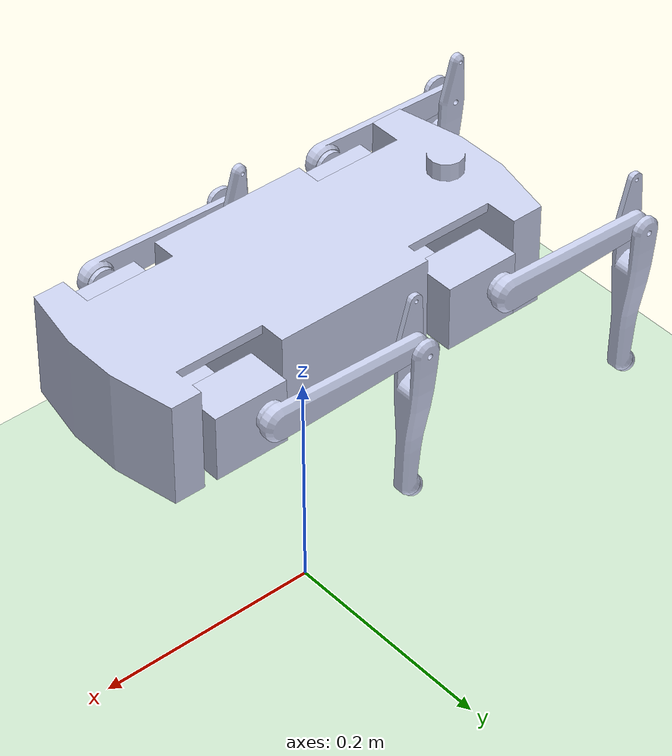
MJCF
<?xml version='1.0' encoding='utf-8'?>
<mujoco model="robodog">
  <compiler angle="radian" meshdir="d:/vscode/RoboDogQuadruped/robodog_ws/src/robodog_description/meshes/" />

  <option timestep="0.002" iterations="50" solver="PGS" gravity="0 0 -9.81" /><asset>
    <mesh name="base_collision" content_type="model/stl" file="base_collision.STL" />
    <mesh name="L_link1_collision" content_type="model/stl" file="L_link1_collision.STL" />
    <mesh name="L_link2_collision" content_type="model/stl" file="L_link2_collision.STL" />
    <mesh name="L_link3_collision" content_type="model/stl" file="L_link3_collision.STL" />
    <mesh name="link4_collision" content_type="model/stl" file="link4_collision.STL" />
    <mesh name="R_link1_collision" content_type="model/stl" file="R_link1_collision.STL" />
    <mesh name="R_link2_collision" content_type="model/stl" file="R_link2_collision.STL" />
    <mesh name="R_link3_collision" content_type="model/stl" file="R_link3_collision.STL" />
  </asset>

  <worldbody>
    <light directional="true" diffuse=".8 .8 .8" specular=".2 .2 .2" pos="0 0 5" dir="0 0 -1" /><geom name="floor" type="plane" size="100 100 .1" rgba=".8 .9 .8 1" friction="1 0.005 0.0001" /><body name="base_link" pos="0 0 0.3">
      <freejoint name="root" /><inertial pos="0 0 0" quat="0.500945 0.499153 -0.500798 0.4991" mass="0.81776" diaginertia="0.00063853 0.000584744 0.000296986" />
      <geom type="mesh" contype="0" conaffinity="0" group="1" density="0" rgba="0.79216 0.81961 0.93333 1" mesh="base_collision" />
      <geom type="mesh" rgba="0.79216 0.81961 0.93333 1" mesh="base_collision" />
      <body name="FL_link1" pos="0.11165 0.061 -0.0144" quat="0.499998 0.5 0.500002 0.5">
        <inertial pos="0 0 0" mass="0.3" diaginertia="0.000193 0.0001489 0.0001241" />
        <joint name="FL_theta1" pos="0 0 0" axis="0 0 1" range="-0.785398 0.785398" actuatorfrcrange="-10 10" damping="1.0" armature="0.05" frictionloss="0.1" />
        <geom type="mesh" contype="0" conaffinity="0" group="1" density="0" rgba="0.79216 0.81961 0.93333 1" mesh="L_link1_collision" />
        <geom type="mesh" rgba="0.79216 0.81961 0.93333 1" mesh="L_link1_collision" />
        <body name="FL_link2" pos="0.0496 0.0144 0" quat="2.27212e-07 0.707107 -2.27212e-07 -0.707107">
          <inertial pos="0 0 0" quat="0 0.716343 0 0.697748" mass="0.1" diaginertia="0.000175797 0.0001726 6.88321e-06" />
          <joint name="FL_theta2" pos="0 0 0" axis="0 0 1" range="-3 3" actuatorfrcrange="-10 10" damping="1.0" armature="0.05" frictionloss="0.1" />
          <geom type="mesh" contype="0" conaffinity="0" group="1" density="0" rgba="0.79216 0.81961 0.93333 1" mesh="L_link2_collision" />
          <geom type="mesh" rgba="0.79216 0.81961 0.93333 1" mesh="L_link2_collision" />
          <body name="FL_link3" pos="0.13 0 0" quat="0.707107 0 0 0.707107">
            <inertial pos="0 0 0" quat="0.493422 0.470029 0.520184 0.514797" mass="0.1" diaginertia="0.000198449 0.000197073 8.32752e-06" />
            <joint name="FL_theta3" pos="0 0 0" axis="0 0 1" range="-3 3" actuatorfrcrange="-10 10" damping="1.0" armature="0.05" frictionloss="0.1" />
            <geom type="mesh" contype="0" conaffinity="0" group="1" density="0" rgba="0.79216 0.81961 0.93333 1" mesh="L_link3_collision" />
            <geom type="mesh" rgba="0.79216 0.81961 0.93333 1" mesh="L_link3_collision" />
            <body name="FL_link4" pos="0.138137 0 0">
              <inertial pos="0 0 0" quat="0.931054 0 0 -0.364882" mass="0.02" diaginertia="7.20384e-07 4.59616e-07 4.5e-07" />
              <geom type="mesh" contype="0" conaffinity="0" group="1" density="0" rgba="0.79216 0.81961 0.93333 1" mesh="link4_collision" />
              <geom type="mesh" rgba="0.79216 0.81961 0.93333 1" mesh="link4_collision" />
            </body>
          </body>
        </body>
      </body>
      <body name="FR_link1" pos="0.11165 -0.061 -0.0144" quat="0.5 0.5 0.5 0.5">
        <inertial pos="0 0 0" mass="0.3" diaginertia="0.000193 0.0001489 0.0001241" />
        <joint name="FR_theta1" pos="0 0 0" axis="0 0 -1" range="-0.785398 0.785398" actuatorfrcrange="-10 10" damping="1.0" armature="0.05" frictionloss="0.1" />
        <geom type="mesh" contype="0" conaffinity="0" group="1" density="0" rgba="0.79216 0.81961 0.93333 1" mesh="R_link1_collision" />
        <geom type="mesh" rgba="0.79216 0.81961 0.93333 1" mesh="R_link1_collision" />
        <body name="FR_link2" pos="-0.0496 0.0144 0" quat="2.14261e-07 0.707107 -2.14261e-07 -0.707107">
          <inertial pos="0 0 0" quat="0 0.716343 0 0.697748" mass="0.1" diaginertia="0.000175797 0.0001726 6.88321e-06" />
          <joint name="FR_theta2" pos="0 0 0" axis="0 0 1" range="-3 3" actuatorfrcrange="-10 10" damping="1.0" armature="0.05" frictionloss="0.1" />
          <geom type="mesh" contype="0" conaffinity="0" group="1" density="0" rgba="0.79216 0.81961 0.93333 1" mesh="R_link2_collision" />
          <geom type="mesh" rgba="0.79216 0.81961 0.93333 1" mesh="R_link2_collision" />
          <body name="FR_link3" pos="0.13 0 0" quat="0.707107 0 0 0.707107">
            <inertial pos="0 0 0" quat="0.493422 0.470029 0.520184 0.514797" mass="0.1" diaginertia="0.000198449 0.000197073 8.32752e-06" />
            <joint name="FR_theta3" pos="0 0 0" axis="0 0 1" range="-3 3" actuatorfrcrange="-10 10" damping="1.0" armature="0.05" frictionloss="0.1" />
            <geom type="mesh" contype="0" conaffinity="0" group="1" density="0" rgba="0.79216 0.81961 0.93333 1" mesh="R_link3_collision" />
            <geom type="mesh" rgba="0.79216 0.81961 0.93333 1" mesh="R_link3_collision" />
            <body name="FR_link4" pos="0.138137 0 0">
              <inertial pos="0 0 0" quat="0.931054 0 0 -0.364882" mass="0.02" diaginertia="7.20384e-07 4.59616e-07 4.5e-07" />
              <geom type="mesh" contype="0" conaffinity="0" group="1" density="0" rgba="0.79216 0.81961 0.93333 1" mesh="link4_collision" />
              <geom type="mesh" rgba="0.79216 0.81961 0.93333 1" mesh="link4_collision" />
            </body>
          </body>
        </body>
      </body>
      <body name="RL_link1" pos="-0.11165 0.061 -0.0144" quat="0.499998 0.5 0.500002 0.5">
        <inertial pos="0 0 0" mass="0.3" diaginertia="0.000193 0.0001489 0.0001241" />
        <joint name="RL_theta1" pos="0 0 0" axis="0 0 1" range="-0.785398 0.785398" actuatorfrcrange="-10 10" damping="1.0" armature="0.05" frictionloss="0.1" />
        <geom type="mesh" contype="0" conaffinity="0" group="1" density="0" rgba="0.79216 0.81961 0.93333 1" mesh="L_link1_collision" />
        <geom type="mesh" rgba="0.79216 0.81961 0.93333 1" mesh="L_link1_collision" />
        <body name="RL_link2" pos="0.0496 0.0144 0" quat="2.27212e-07 0.707107 -2.27212e-07 -0.707107">
          <inertial pos="0 0 0" quat="0 0.716343 0 0.697748" mass="0.1" diaginertia="0.000175797 0.0001726 6.88321e-06" />
          <joint name="RL_theta2" pos="0 0 0" axis="0 0 1" range="-3 3" actuatorfrcrange="-10 10" damping="1.0" armature="0.05" frictionloss="0.1" />
          <geom type="mesh" contype="0" conaffinity="0" group="1" density="0" rgba="0.79216 0.81961 0.93333 1" mesh="L_link2_collision" />
          <geom type="mesh" rgba="0.79216 0.81961 0.93333 1" mesh="L_link2_collision" />
          <body name="RL_link3" pos="0.13 0 0" quat="0.707107 0 0 0.707107">
            <inertial pos="0 0 0" quat="0.493422 0.470029 0.520184 0.514797" mass="0.1" diaginertia="0.000198449 0.000197073 8.32752e-06" />
            <joint name="RL_theta3" pos="0 0 0" axis="0 0 1" range="-3 3" actuatorfrcrange="-10 10" damping="1.0" armature="0.05" frictionloss="0.1" />
            <geom type="mesh" contype="0" conaffinity="0" group="1" density="0" rgba="0.79216 0.81961 0.93333 1" mesh="L_link3_collision" />
            <geom type="mesh" rgba="0.79216 0.81961 0.93333 1" mesh="L_link3_collision" />
            <body name="RL_link4" pos="0.138137 0 0">
              <inertial pos="0 0 0" quat="0.931054 0 0 -0.364882" mass="0.02" diaginertia="7.20384e-07 4.59616e-07 4.5e-07" />
              <geom type="mesh" contype="0" conaffinity="0" group="1" density="0" rgba="0.79216 0.81961 0.93333 1" mesh="link4_collision" />
              <geom type="mesh" rgba="0.79216 0.81961 0.93333 1" mesh="link4_collision" />
            </body>
          </body>
        </body>
      </body>
      <body name="RR_link1" pos="-0.11165 -0.061 -0.0144" quat="0.5 0.5 0.5 0.5">
        <inertial pos="0 0 0" mass="0.3" diaginertia="0.000193 0.0001489 0.0001241" />
        <joint name="RR_theta1" pos="0 0 0" axis="0 0 -1" range="-0.785398 0.785398" actuatorfrcrange="-10 10" damping="1.0" armature="0.05" frictionloss="0.1" />
        <geom type="mesh" contype="0" conaffinity="0" group="1" density="0" rgba="0.79216 0.81961 0.93333 1" mesh="R_link1_collision" />
        <geom type="mesh" rgba="0.79216 0.81961 0.93333 1" mesh="R_link1_collision" />
        <body name="RR_link2" pos="-0.0496 0.0144 0" quat="2.14261e-07 0.707107 -2.14261e-07 -0.707107">
          <inertial pos="0 0 0" quat="0 0.716343 0 0.697748" mass="0.1" diaginertia="0.000175797 0.0001726 6.88321e-06" />
          <joint name="RR_theta2" pos="0 0 0" axis="0 0 1" range="-3 3" actuatorfrcrange="-10 10" damping="1.0" armature="0.05" frictionloss="0.1" />
          <geom type="mesh" contype="0" conaffinity="0" group="1" density="0" rgba="0.79216 0.81961 0.93333 1" mesh="R_link2_collision" />
          <geom type="mesh" rgba="0.79216 0.81961 0.93333 1" mesh="R_link2_collision" />
          <body name="RR_link3" pos="0.13 0 0" quat="0.707107 0 0 0.707107">
            <inertial pos="0 0 0" quat="0.493422 0.470029 0.520184 0.514797" mass="0.1" diaginertia="0.000198449 0.000197073 8.32752e-06" />
            <joint name="RR_theta3" pos="0 0 0" axis="0 0 1" range="-3 3" actuatorfrcrange="-10 10" damping="1.0" armature="0.05" frictionloss="0.1" />
            <geom type="mesh" contype="0" conaffinity="0" group="1" density="0" rgba="0.79216 0.81961 0.93333 1" mesh="R_link3_collision" />
            <geom type="mesh" rgba="0.79216 0.81961 0.93333 1" mesh="R_link3_collision" />
            <body name="RR_link4" pos="0.138137 0 0">
              <inertial pos="0 0 0" quat="0.931054 0 0 -0.364882" mass="0.02" diaginertia="7.20384e-07 4.59616e-07 4.5e-07" />
              <geom type="mesh" contype="0" conaffinity="0" group="1" density="0" rgba="0.79216 0.81961 0.93333 1" mesh="link4_collision" />
              <geom type="mesh" rgba="0.79216 0.81961 0.93333 1" mesh="link4_collision" />
            </body>
          </body>
        </body>
      </body>
    </body>
  </worldbody>
<actuator><position joint="FL_theta1" kp="20" ctrlrange="-0.785398 0.785398" ctrllimited="true" /><position joint="FL_theta2" kp="20" ctrlrange="-3 3" ctrllimited="true" /><position joint="FL_theta3" kp="20" ctrlrange="-3 3" ctrllimited="true" /><position joint="FR_theta1" kp="20" ctrlrange="-0.785398 0.785398" ctrllimited="true" /><position joint="FR_theta2" kp="20" ctrlrange="-3 3" ctrllimited="true" /><position joint="FR_theta3" kp="20" ctrlrange="-3 3" ctrllimited="true" /><position joint="RL_theta1" kp="20" ctrlrange="-0.785398 0.785398" ctrllimited="true" /><position joint="RL_theta2" kp="20" ctrlrange="-3 3" ctrllimited="true" /><position joint="RL_theta3" kp="20" ctrlrange="-3 3" ctrllimited="true" /><position joint="RR_theta1" kp="20" ctrlrange="-0.785398 0.785398" ctrllimited="true" /><position joint="RR_theta2" kp="20" ctrlrange="-3 3" ctrllimited="true" /><position joint="RR_theta3" kp="20" ctrlrange="-3 3" ctrllimited="true" /></actuator></mujoco>
